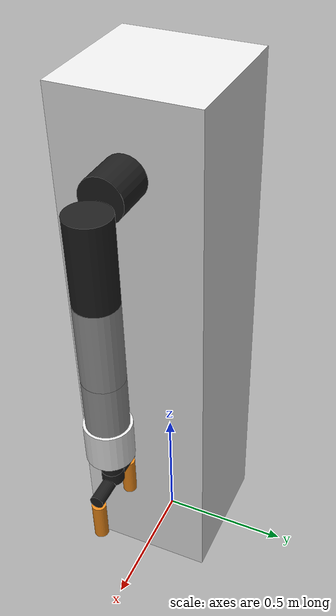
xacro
<?xml version="1.0" ?>

<robot name="my_arm" xmlns:xacro="http://www.ros.org/wiki/xacro">

    <xacro:include filename="$(find myroboticarm_description)/urdf/robot_parameters.xacro" />
    <xacro:include filename="$(find myroboticarm_description)/urdf/links_joints_moveit.xacro" />

   <!-- Virtual link to World-->
    <link name="world"/>
    <joint name="world__base_link" type="fixed">
        <axis xyz="0 0 1" />
        <origin rpy="0 0 0" xyz="0 0 0" />
        <parent link="world" />
        <child link="${link_00_name}" />
    </joint>

    <!-- base link -->
    <m_link_box name="${link_00_name}"

        origin_rpy="0 0 0" origin_xyz="0 0 1"
        size="0.5 0.5 2"
        mass="3072"
        ixx="426.667" ixy="0" ixz="0"
        iyy="426.667" iyz="0"
        izz="170.667"/>

    <m_joint name="${link_00_name}__${link_01_name}" type="revolute"
        axis_xyz="0 0 1"
        origin_rpy="0 0 0" origin_xyz="0.25 0 1.75"
        parent="${link_00_name}" child="${link_01_name}"
        limit_e="1000" limit_l="-0.75" limit_u="0.75" limit_v="0.5" />

    <m_link_cylinder name="${link_01_name}"
        origin_rpy="0 1.57 0" origin_xyz="0.075 0 0"
        radius="0.075" length="0.15"
        mass="1"
        ixx="0.00328125" ixy="0" ixz="0"
        iyy="0.00328125" iyz="0"
        izz="0.00328125" />

    <m_joint name="${link_01_name}__${link_02_name}" type="revolute"
        axis_xyz="0 -1 0"
        origin_rpy="0 0 0" origin_xyz="0.15 0 -0.075"
        parent="${link_01_name}" child="${link_02_name}"
        limit_e="1000" limit_l="0" limit_u="1.57" limit_v="0.5" />

    <m_link_cylinder name="${link_02_name}"
        origin_rpy="0 0 0" origin_xyz="0.075 0 -0.075"
        radius="0.075" length="0.3"
        mass="2.5"
        ixx="0.022265625" ixy="0" ixz="0"
        iyy="0.022265625" iyz="0"
        izz="0.00703125" />

    <m_joint name="${link_02_name}__${link_03_name}" type="revolute"
        axis_xyz="0 0 1"
        origin_rpy="0 0 -1.57" origin_xyz="0.075 0 -0.225"
        parent="${link_02_name}" child="${link_03_name}"
        limit_e="1000" limit_l="-2.00" limit_u="2.00" limit_v="0.5" />

    <m_link_cylinder name="${link_03_name}"
        origin_rpy="0 0 0" origin_xyz="0 0 -0.15"
        radius="0.075" length="0.3"
        mass="2.5"
        ixx="0.022265625" ixy="0" ixz="0"
        iyy="0.022265625" iyz="0"
        izz="0.00703125" />

    <m_joint name="${link_03_name}__${link_04_name}" type="revolute"
        axis_xyz="1 0 0"
        origin_rpy="0 0 0" origin_xyz="0 0 -0.3"
        parent="${link_03_name}" child="${link_04_name}"
        limit_e="1000" limit_l="0.0" limit_u="2.23" limit_v="0.5" />

    <m_link_cylinder name="${link_04_name}"
        origin_rpy="0 0 0" origin_xyz="0 0 -0.10"
        radius="0.075" length="0.2"
        mass="2"
        ixx="0.00947916666667" ixy="0" ixz="0"
        iyy="0.00947916666667" iyz="0"
        izz="0.005625" />

    <m_joint name="${link_04_name}__${link_05_name}" type="revolute"
        axis_xyz="0 0 1"
        origin_rpy="0 0 0" origin_xyz="0 0 -0.2"
        parent="${link_04_name}" child="${link_05_name}"
        limit_e="1000" limit_l="-2.51" limit_u="2.51" limit_v="0.5" />

    <m_link_cylinder name="${link_05_name}"
        origin_rpy="0 0 0" origin_xyz="0 0 -0.075"
        radius="0.085" length="0.15"
        mass="1.5"
        ixx="0.005521875" ixy="0" ixz="0"
        iyy="0.005521875" iyz="0"
        izz="0.00541875" />

    <m_joint name="${link_05_name}__${link_06_name}" type="revolute"
        axis_xyz="1 0 0"
        origin_rpy="0 0 0" origin_xyz="0 0 -0.15"
        parent="${link_05_name}" child="${link_06_name}"
        limit_e="1000" limit_l="-1.37" limit_u="1.37" limit_v="0.5" />

    <m_link_cylinder name="${link_06_name}"
        origin_rpy="0 0 0" origin_xyz="0 0 -0.04"
        radius="0.04" length="0.08"
        mass="1"
        ixx="0.000933333333333" ixy="0" ixz="0"
        iyy="0.000933333333333" iyz="0"
        izz="0.0008" />

    <m_joint name="${link_06_name}__${link_07_name}" type="revolute"
        axis_xyz="0 1 0"
        origin_rpy="0 0 0" origin_xyz="0 0 -0.08"
        parent="${link_06_name}" child="${link_07_name}"
        limit_e="1000" limit_l="-0.68" limit_u="0.68" limit_v="0.5" />

    <m_link_cylinder name="${link_07_name}"
        origin_rpy="0 0 0" origin_xyz="0 0 -0.025"
        radius="0.04" length="0.05"
        mass="1"
        ixx="0.000608333333333" ixy="0" ixz="0"
        iyy="0.000608333333333" iyz="0"
        izz="0.0008" />

<!-- Colors -->
<gazebo reference="${link_00_name}">
	<material>Gazebo/White</material>
</gazebo>
<gazebo reference="${link_01_name}">
	<material>Gazebo/Black</material>
</gazebo>
<gazebo reference="${link_02_name}">
	<material>Gazebo/Black</material>
</gazebo>
<gazebo reference="${link_03_name}">
	<material>Gazebo/Grey</material>
</gazebo>
<gazebo reference="${link_04_name}">
	<material>Gazebo/Grey</material>
</gazebo>
<gazebo reference="${link_05_name}">
	<material>Gazebo/White</material>
</gazebo>
<gazebo reference="${link_06_name}">
	<material>Gazebo/Black</material>
</gazebo>
<gazebo reference="${link_07_name}">
	<material>Gazebo/Black</material>
</gazebo>

  <!-- ___________________________ PINZA _________________________________-->

  <joint name="${link_07_name}__${link_08_name}" type="fixed">
    <axis xyz="0 1 0" />
    <origin rpy="0 0 0" xyz="0 0 -0.05" />
    <parent link="${link_07_name}" />
    <child link="${link_08_name}" />
    </joint>

  <m_link_cylinder name="${link_08_name}"
              origin_rpy="1.5708 0 0" origin_xyz="0 0 0"
              mass="0.4"
              ixx="0.05" ixy="0" ixz="0"
              iyy="0.002" iyz="0"
              izz="0.05"
              radius="0.025" length="0.25" />

  <m_joint name="${link_08_name}__${link_09_name}" type="prismatic"
           axis_xyz="0 1 0"
           origin_rpy="0 0 0" origin_xyz="0 0.1125 0"
           parent="${link_08_name}" child="${link_09_name}"
           limit_e="100" limit_l="-0.0875" limit_u="0.0" limit_v="0.5" />

  <m_link_cylinder name="${link_09_name}"
              origin_rpy="0 3.14 0" origin_xyz="0 0 -0.1"
              mass="0.2"
              ixx="0.02" ixy="0" ixz="0"
              iyy="0.02" iyz="0"
              izz="0.001"
              radius="0.025" length="0.15" />

  <m_joint name="${link_08_name}__${link_10_name}" type="prismatic"
           axis_xyz="0 1 0"
           origin_rpy="0 0 0" origin_xyz="0 -0.1125 0"
           parent="${link_08_name}" child="${link_10_name}"
           limit_e="100" limit_l="0" limit_u="0.0875" limit_v="0.5" />

  <m_link_cylinder name="${link_10_name}"
              origin_rpy="0 3.14 0" origin_xyz="0 0 -0.1"
              mass="0.2"
              ixx="0.02" ixy="0" ixz="0"
              iyy="0.02" iyz="0"
              izz="0.001"
              radius="0.025" length="0.15" />

    <!-- Colors gripper -->
<gazebo reference="${link_08_name}">
	<material>Gazebo/Black</material>
</gazebo>
<gazebo reference="${link_09_name}">
	<material>Gazebo/Orange</material>
</gazebo>
<gazebo reference="${link_10_name}">
	<material>Gazebo/Orange</material>
</gazebo>

    <gazebo>
        <plugin name="gazebo_ros_control" filename="libgazebo_ros_control.so">
            <robotNamespace>/myroboticarm</robotNamespace>
            <robotSimType>gazebo_ros_control/DefaultRobotHWSim</robotSimType>
            <legacyModeNS>true</legacyModeNS>
        </plugin>
    </gazebo>

</robot>

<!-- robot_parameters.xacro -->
<robot xmlns:xacro="http://www.ros.org/wiki/xacro">

  <xacro:property name="link_00_name" value="base_link" />
  <xacro:property name="link_01_name" value="link_01" />
  <xacro:property name="link_02_name" value="link_02" />
  <xacro:property name="link_03_name" value="link_03" />
  <xacro:property name="link_04_name" value="link_04" />
  <xacro:property name="link_05_name" value="link_05" />
  <xacro:property name="link_06_name" value="link_06" />
  <xacro:property name="link_07_name" value="link_07" />
  <xacro:property name="link_08_name" value="link_08" />
  <xacro:property name="link_09_name" value="link_09" />
  <xacro:property name="link_10_name" value="link_10" />

</robot>

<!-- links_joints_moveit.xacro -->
<robot xmlns:xacro="http://www.ros.org/wiki/xacro">

  <xacro:macro name="m_joint" params="name type axis_xyz origin_rpy origin_xyz parent child limit_e limit_l limit_u limit_v">
    <joint name="${name}" type="${type}">
      <axis xyz="${axis_xyz}" />
      <limit effort="${limit_e}" lower="${limit_l}" upper="${limit_u}" velocity="${limit_v}" />
      <origin rpy="${origin_rpy}" xyz="${origin_xyz}" />
      <parent link="${parent}" />
      <child link="${child}" />
    </joint>
    <transmission name="trans_${name}">
      <type>transmission_interface/SimpleTransmission</type>
      <joint name="${name}">
        <hardwareInterface>hardware_interface/PositionJointInterface</hardwareInterface>
      </joint>
      <actuator name="motor_${name}">
        <hardwareInterface>hardware_interface/PositionJointInterface</hardwareInterface>
        <mechanicalReduction>1</mechanicalReduction>
      </actuator>
    </transmission>
  </xacro:macro>

  <xacro:macro name="m_link_cylinder" params="name origin_xyz origin_rpy radius length mass ixx ixy ixz iyy iyz izz">
    <link name="${name}">
      <inertial>
        <mass value="${mass}" />
        <origin rpy="${origin_rpy}" xyz="${origin_xyz}" />
        <inertia ixx="${ixx}" ixy="${ixy}" ixz="${ixz}" iyy="${iyy}" iyz="${iyz}" izz="${izz}" />
      </inertial>
      <collision>
        <origin rpy="${origin_rpy}" xyz="${origin_xyz}" />
        <geometry>
          <cylinder radius="${radius}" length="${length}" />
        </geometry>
      </collision>
      <visual>
        <origin rpy="${origin_rpy}" xyz="${origin_xyz}" />
        <geometry>
          <cylinder radius="${radius}" length="${length}" />
        </geometry>
      </visual>
    </link>
  </xacro:macro>

  <xacro:macro name="m_link_box" params="name origin_xyz origin_rpy size mass ixx ixy ixz iyy iyz izz">
    <link name="${name}">
      <inertial>
        <mass value="${mass}" />
        <origin rpy="${origin_rpy}" xyz="${origin_xyz}" />
        <inertia ixx="${ixx}" ixy="${ixy}" ixz="${ixz}" iyy="${iyy}" iyz="${iyz}" izz="${izz}" />
      </inertial>
      <collision>
        <origin rpy="${origin_rpy}" xyz="${origin_xyz}" />
        <geometry>
          <box size="${size}" />
        </geometry>
      </collision>
      <visual>
        <origin rpy="${origin_rpy}" xyz="${origin_xyz}" />
        <geometry>
          <box size="${size}" />
        </geometry>
      </visual>
    </link>
  </xacro:macro>

</robot>
